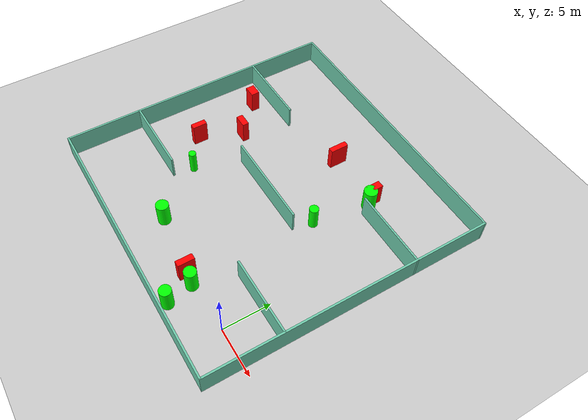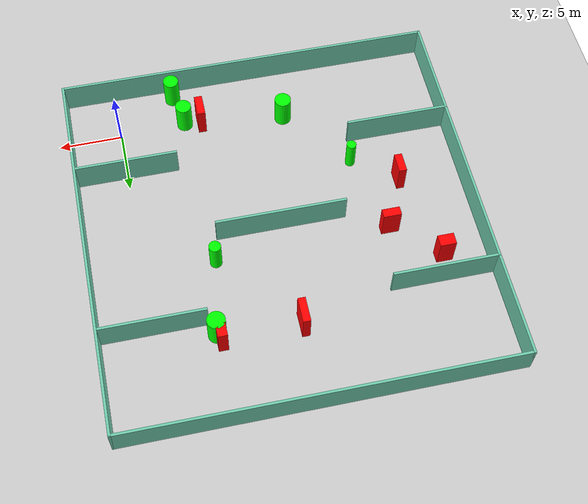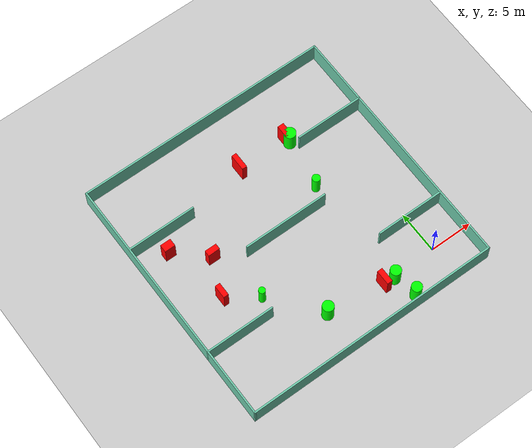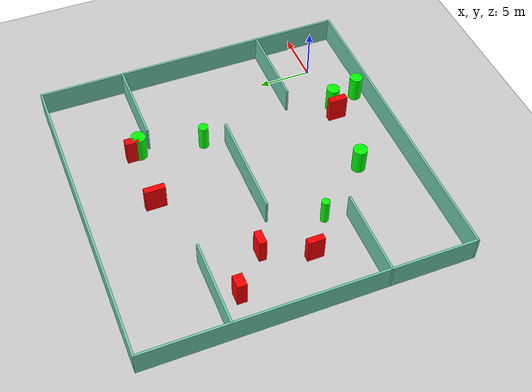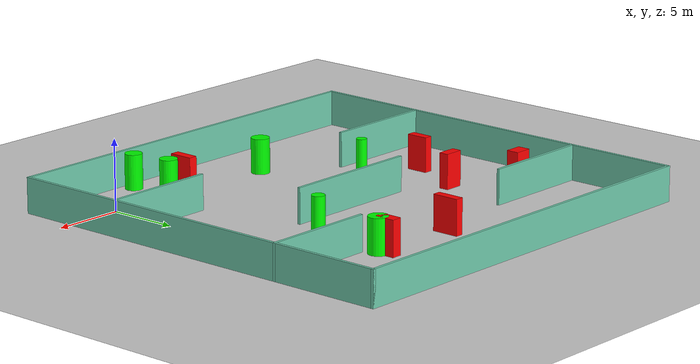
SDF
<sdf version="1.7">
 <world name="default">
  <light name="sun" type="directional">
   <pose>0 0 10 0 -0 0</pose>
   <diffuse>0.8 0.8 0.8 1</diffuse>
   <specular>0.2 0.2 0.2 1</specular>
   <attenuation>
    <range>1000</range>
    <constant>0.9</constant>
    <linear>0.01</linear>
    <quadratic>0.001</quadratic>
   </attenuation>
   <direction>-0.5 0.1 -0.9</direction>
   <spot><inner_angle>0</inner_angle><outer_angle>0</outer_angle><falloff>0</falloff></spot>
  </light>
  <model name="ground_plane">
   <static>1</static>
   <link name="link">
    <collision name="collision">
     <geometry><plane><normal>0 0 1</normal><size>100 100</size></plane></geometry>
     <surface>
      <contact><collide_bitmask>65535</collide_bitmask></contact>
      <friction><ode><mu>100</mu><mu2>50</mu2></ode></friction>
     </surface>
    </collision>
    <visual name="visual">
     <cast_shadows>0</cast_shadows>
     <geometry><plane><normal>0 0 1</normal><size>100 100</size></plane></geometry>
     <material>
      <script><uri>file://media/materials/scripts/gazebo.material</uri><name>Gazebo/Grey</name></script>
     </material>
    </visual>
   </link>
  </model>
  <gravity>0 0 -9.8</gravity>
  <magnetic_field>6e-06 2.3e-05 -4.2e-05</magnetic_field>
  <atmosphere type="adiabatic"/>
  <physics type="ode">
   <max_step_size>0.001</max_step_size>
   <real_time_factor>1</real_time_factor>
   <real_time_update_rate>1000</real_time_update_rate>
  </physics>
  <scene><ambient>0.4 0.4 0.4 1</ambient><background>0.7 0.7 0.7 1</background><shadows>1</shadows></scene>
  <spherical_coordinates>
   <surface_model>EARTH_WGS84</surface_model>
   <latitude_deg>0</latitude_deg>
   <longitude_deg>0</longitude_deg>
   <elevation>0</elevation>
   <heading_deg>0</heading_deg>
  </spherical_coordinates>
  <model name="my_base_walls">
   <link name="Wall_10">
    <collision name="Wall_10_Collision">
     <geometry><box><size>8.2 0.2 2.5</size></box></geometry>
     <pose>0 0 1.25 0 -0 0</pose>
    </collision>
    <visual name="Wall_10_Visual">
     <pose>0 0 1.25 0 -0 0</pose>
     <geometry><box><size>8.2 0.2 2.5</size></box></geometry>
     <material>
      <script><uri>file://media/materials/scripts/gazebo.material</uri><name>Gazebo/Grey</name></script>
      <ambient>0.435294 0.796078 0.67451 1</ambient>
     </material>
     <meta><layer>0</layer></meta>
    </visual>
    <pose>-11 -7 0 0 -0 0</pose>
   </link>
   <link name="Wall_12">
    <collision name="Wall_12_Collision">
     <geometry><box><size>8.2 0.2 2.5</size></box></geometry>
     <pose>0 0 1.25 0 -0 0</pose>
    </collision>
    <visual name="Wall_12_Visual">
     <pose>0 0 1.25 0 -0 0</pose>
     <geometry><box><size>8.2 0.2 2.5</size></box></geometry>
     <material>
      <script><uri>file://media/materials/scripts/gazebo.material</uri><name>Gazebo/Grey</name></script>
      <ambient>0.435294 0.796078 0.67451 1</ambient>
     </material>
     <meta><layer>0</layer></meta>
    </visual>
    <pose>-11 7 0 0 -0 0</pose>
   </link>
   <link name="Wall_14">
    <collision name="Wall_14_Collision">
     <geometry><box><size>8.2 0.2 2.5</size></box></geometry>
     <pose>0 0 1.25 0 -0 0</pose>
    </collision>
    <visual name="Wall_14_Visual">
     <pose>0 0 1.25 0 -0 0</pose>
     <geometry><box><size>8.2 0.2 2.5</size></box></geometry>
     <material>
      <script><uri>file://media/materials/scripts/gazebo.material</uri><name>Gazebo/Grey</name></script>
      <ambient>0.435294 0.796078 0.67451 1</ambient>
     </material>
     <meta><layer>0</layer></meta>
    </visual>
    <pose>11 7 0 0 -0 3.14159</pose>
   </link>
   <link name="Wall_16">
    <collision name="Wall_16_Collision">
     <geometry><box><size>10.2 0.2 2.5</size></box></geometry>
     <pose>0 0 1.25 0 -0 0</pose>
    </collision>
    <visual name="Wall_16_Visual">
     <pose>0 0 1.25 0 -0 0</pose>
     <geometry><box><size>10.2 0.2 2.5</size></box></geometry>
     <material>
      <script><uri>file://media/materials/scripts/gazebo.material</uri><name>Gazebo/Grey</name></script>
      <ambient>0.435294 0.796078 0.67451 1</ambient>
     </material>
     <meta><layer>0</layer></meta>
    </visual>
    <pose>0 0 0 0 -0 3.14159</pose>
   </link>
   <link name="Wall_2">
    <collision name="Wall_2_Collision">
     <geometry><box><size>30.2 0.2 2.5</size></box></geometry>
     <pose>0 0 1.25 0 -0 0</pose>
    </collision>
    <visual name="Wall_2_Visual">
     <pose>0 0 1.25 0 -0 0</pose>
     <geometry><box><size>30.2 0.2 2.5</size></box></geometry>
     <material>
      <script><uri>file://media/materials/scripts/gazebo.material</uri><name>Gazebo/Grey</name></script>
      <ambient>0.435294 0.796078 0.67451 1</ambient>
     </material>
     <meta><layer>0</layer></meta>
    </visual>
    <pose>0 -15 0 0 -0 3.14159</pose>
   </link>
   <link name="Wall_3">
    <collision name="Wall_3_Collision">
     <geometry><box><size>30.2 0.2 2.5</size></box></geometry>
     <pose>0 0 1.25 0 -0 0</pose>
    </collision>
    <visual name="Wall_3_Visual">
     <pose>0 0 1.25 0 -0 0</pose>
     <geometry><box><size>30.2 0.2 2.5</size></box></geometry>
     <material>
      <script><uri>file://media/materials/scripts/gazebo.material</uri><name>Gazebo/Grey</name></script>
      <ambient>0.435294 0.796078 0.67451 1</ambient>
     </material>
     <meta><layer>0</layer></meta>
    </visual>
    <pose>-15 0 0 0 -0 1.5708</pose>
   </link>
   <link name="Wall_4">
    <collision name="Wall_4_Collision">
     <geometry><box><size>30.2 0.2 2.5</size></box></geometry>
     <pose>0 0 1.25 0 -0 0</pose>
    </collision>
    <visual name="Wall_4_Visual">
     <pose>0 0 1.25 0 -0 0</pose>
     <geometry><box><size>30.2 0.2 2.5</size></box></geometry>
     <material>
      <script><uri>file://media/materials/scripts/gazebo.material</uri><name>Gazebo/Grey</name></script>
      <ambient>0.435294 0.796078 0.67451 1</ambient>
     </material>
     <meta><layer>0</layer></meta>
    </visual>
    <pose>0 15 0 0 -0 0</pose>
   </link>
   <link name="Wall_6">
    <collision name="Wall_6_Collision">
     <geometry><box><size>30.2 0.2 2.5</size></box></geometry>
     <pose>0 0 1.25 0 -0 0</pose>
    </collision>
    <visual name="Wall_6_Visual">
     <pose>0 0 1.25 0 -0 0</pose>
     <geometry><box><size>30.2 0.2 2.5</size></box></geometry>
     <material>
      <script><uri>file://media/materials/scripts/gazebo.material</uri><name>Gazebo/Grey</name></script>
      <ambient>0.435294 0.796078 0.67451 1</ambient>
     </material>
     <meta><layer>0</layer></meta>
    </visual>
    <pose>15 0 0 0 -0 1.5708</pose>
   </link>
   <link name="Wall_8">
    <collision name="Wall_8_Collision">
     <geometry><box><size>8.2 0.2 2.5</size></box></geometry>
     <pose>0 0 1.25 0 -0 0</pose>
    </collision>
    <visual name="Wall_8_Visual">
     <pose>0 0 1.25 0 -0 0</pose>
     <geometry><box><size>8.2 0.2 2.5</size></box></geometry>
     <material>
      <script><uri>file://media/materials/scripts/gazebo.material</uri><name>Gazebo/Grey</name></script>
      <ambient>0.435294 0.796078 0.67451 1</ambient>
     </material>
     <meta><layer>0</layer></meta>
    </visual>
    <pose>11 -7 0 0 -0 3.14159</pose>
   </link>
   <static>1</static>
   <pose>-11 11 0 0 -0 0</pose>
  </model>
  <model name="cylinder1">
   <static>1</static>
   <link name="link">
    <inertial>
     <mass>1</mass>
     <inertia><ixx>0.5</ixx><ixy>0</ixy><ixz>0</ixz><iyy>0.5</iyy><iyz>0</iyz><izz>1</izz></inertia>
    </inertial>
    <collision name="collision">
     <geometry><cylinder><radius>0.6271884214263486</radius><length>2.5</length></cylinder></geometry>
    </collision>
    <visual name="visual">
     <geometry><cylinder><radius>0.6271884214263486</radius><length>2.5</length></cylinder></geometry>
     <material>
      <ambient>0 1 0 1</ambient>
      <diffuse>0 1 0 1</diffuse>
      <specular>0.1 0.1 0.1 1</specular>
      <emissive>0 0 0 0</emissive>
     </material>
    </visual>
   </link>
   <pose>-5.288291116170543 -0.26485699210243085 1.25 0 0 0</pose>
  </model>
  <model name="cylinder2">
   <static>1</static>
   <link name="link">
    <inertial>
     <mass>1</mass>
     <inertia><ixx>0.5</ixx><ixy>0</ixy><ixz>0</ixz><iyy>0.5</iyy><iyz>0</iyz><izz>1</izz></inertia>
    </inertial>
    <collision name="collision">
     <geometry><cylinder><radius>0.6126850902534754</radius><length>2.5</length></cylinder></geometry>
    </collision>
    <visual name="visual">
     <geometry><cylinder><radius>0.6126850902534754</radius><length>2.5</length></cylinder></geometry>
     <material>
      <ambient>0 1 0 1</ambient>
      <diffuse>0 1 0 1</diffuse>
      <specular>0.1 0.1 0.1 1</specular>
      <emissive>0 0 0 0</emissive>
     </material>
    </visual>
   </link>
   <pose>-4.695530231264945 -2.99641944347848 1.25 0 0 0</pose>
  </model>
  <model name="cylinder3">
   <static>1</static>
   <link name="link">
    <inertial>
     <mass>1</mass>
     <inertia><ixx>0.5</ixx><ixy>0</ixy><ixz>0</ixz><iyy>0.5</iyy><iyz>0</iyz><izz>1</izz></inertia>
    </inertial>
    <collision name="collision">
     <geometry><cylinder><radius>0.6975109721893586</radius><length>2.5</length></cylinder></geometry>
    </collision>
    <visual name="visual">
     <geometry><cylinder><radius>0.6975109721893586</radius><length>2.5</length></cylinder></geometry>
     <material>
      <ambient>0 1 0 1</ambient>
      <diffuse>0 1 0 1</diffuse>
      <specular>0.1 0.1 0.1 1</specular>
      <emissive>0 0 0 0</emissive>
     </material>
    </visual>
   </link>
   <pose>-4.536073631506017 19.026405603399077 1.25 0 0 0</pose>
  </model>
  <model name="cylinder4">
   <static>1</static>
   <link name="link">
    <inertial>
     <mass>1</mass>
     <inertia><ixx>0.5</ixx><ixy>0</ixy><ixz>0</ixz><iyy>0.5</iyy><iyz>0</iyz><izz>1</izz></inertia>
    </inertial>
    <collision name="collision">
     <geometry><cylinder><radius>0.46890810205634104</radius><length>2.5</length></cylinder></geometry>
    </collision>
    <visual name="visual">
     <geometry><cylinder><radius>0.46890810205634104</radius><length>2.5</length></cylinder></geometry>
     <material>
      <ambient>0 1 0 1</ambient>
      <diffuse>0 1 0 1</diffuse>
      <specular>0.1 0.1 0.1 1</specular>
      <emissive>0 0 0 0</emissive>
     </material>
    </visual>
   </link>
   <pose>-5.5090906269547375 13.057013479210138 1.25 0 0 0</pose>
  </model>
  <model name="cylinder5">
   <static>1</static>
   <link name="link">
    <inertial>
     <mass>1</mass>
     <inertia><ixx>0.5</ixx><ixy>0</ixy><ixz>0</ixz><iyy>0.5</iyy><iyz>0</iyz><izz>1</izz></inertia>
    </inertial>
    <collision name="collision">
     <geometry><cylinder><radius>0.3805435629933935</radius><length>2.5</length></cylinder></geometry>
    </collision>
    <visual name="visual">
     <geometry><cylinder><radius>0.3805435629933935</radius><length>2.5</length></cylinder></geometry>
     <material>
      <ambient>0 1 0 1</ambient>
      <diffuse>0 1 0 1</diffuse>
      <specular>0.1 0.1 0.1 1</specular>
      <emissive>0 0 0 0</emissive>
     </material>
    </visual>
   </link>
   <pose>-17.674147813602456 6.150739072864074 1.25 0 0 0</pose>
  </model>
  <model name="cylinder6">
   <static>1</static>
   <link name="link">
    <inertial>
     <mass>1</mass>
     <inertia><ixx>0.5</ixx><ixy>0</ixy><ixz>0</ixz><iyy>0.5</iyy><iyz>0</iyz><izz>1</izz></inertia>
    </inertial>
    <collision name="collision">
     <geometry><cylinder><radius>0.6552068692052043</radius><length>2.5</length></cylinder></geometry>
    </collision>
    <visual name="visual">
     <geometry><cylinder><radius>0.6552068692052043</radius><length>2.5</length></cylinder></geometry>
     <material>
      <ambient>0 1 0 1</ambient>
      <diffuse>0 1 0 1</diffuse>
      <specular>0.1 0.1 0.1 1</specular>
      <emissive>0 0 0 0</emissive>
     </material>
    </visual>
   </link>
   <pose>-13.292309695598597 0.7202482100335419 1.25 0 0 0</pose>
  </model>
  <model name="box1">
   <static>1</static>
   <link name="link">
    <inertial>
     <mass>1</mass>
     <inertia><ixx>0.083</ixx><ixy>0</ixy><ixz>0</ixz><iyy>0.083</iyy><iyz>0</iyz><izz>0.083</izz></inertia>
    </inertial>
    <collision name="collision">
     <geometry><box><size>0.6076454823511694 1.5581058341478196 2.5</size></box></geometry>
    </collision>
    <visual name="visual">
     <geometry><box><size>0.6076454823511694 1.5581058341478196 2.5</size></box></geometry>
     <material>
      <ambient>1 0 0 1</ambient>
      <diffuse>1 0 0 1</diffuse>
      <specular>0.1 0.1 0.1 1</specular>
      <emissive>0 0 0 0</emissive>
     </material>
    </visual>
    <sensor name="my_contact" type="contact">
     <contact><collision>box_collision</collision><topic>__default_topic__</topic></contact>
    </sensor>
   </link>
   <pose>-20.996144046854017 8.590171372684086 1.25 0 0 0</pose>
  </model>
  <model name="box2">
   <static>1</static>
   <link name="link">
    <inertial>
     <mass>1</mass>
     <inertia><ixx>0.083</ixx><ixy>0</ixy><ixz>0</ixz><iyy>0.083</iyy><iyz>0</iyz><izz>0.083</izz></inertia>
    </inertial>
    <collision name="collision">
     <geometry><box><size>0.6380102922302227 1.733046387089564 2.5</size></box></geometry>
    </collision>
    <visual name="visual">
     <geometry><box><size>0.6380102922302227 1.733046387089564 2.5</size></box></geometry>
     <material>
      <ambient>1 0 0 1</ambient>
      <diffuse>1 0 0 1</diffuse>
      <specular>0.1 0.1 0.1 1</specular>
      <emissive>0 0 0 0</emissive>
     </material>
    </visual>
    <sensor name="my_contact" type="contact">
     <contact><collision>box_collision</collision><topic>__default_topic__</topic></contact>
    </sensor>
   </link>
   <pose>-6.614313545083396 -0.11971460154681335 1.25 0 0 0</pose>
  </model>
  <model name="box3">
   <static>1</static>
   <link name="link">
    <inertial>
     <mass>1</mass>
     <inertia><ixx>0.083</ixx><ixy>0</ixy><ixz>0</ixz><iyy>0.083</iyy><iyz>0</iyz><izz>0.083</izz></inertia>
    </inertial>
    <collision name="collision">
     <geometry><box><size>1.2522521211320607 0.9030371895464181 2.5</size></box></geometry>
    </collision>
    <visual name="visual">
     <geometry><box><size>1.2522521211320607 0.9030371895464181 2.5</size></box></geometry>
     <material>
      <ambient>1 0 0 1</ambient>
      <diffuse>1 0 0 1</diffuse>
      <specular>0.1 0.1 0.1 1</specular>
      <emissive>0 0 0 0</emissive>
     </material>
    </visual>
    <sensor name="my_contact" type="contact">
     <contact><collision>box_collision</collision><topic>__default_topic__</topic></contact>
    </sensor>
   </link>
   <pose>-22.556659000705757 16.013239955643247 1.25 0 0 0</pose>
  </model>
  <model name="box4">
   <static>1</static>
   <link name="link">
    <inertial>
     <mass>1</mass>
     <inertia><ixx>0.083</ixx><ixy>0</ixy><ixz>0</ixz><iyy>0.083</iyy><iyz>0</iyz><izz>0.083</izz></inertia>
    </inertial>
    <collision name="collision">
     <geometry><box><size>0.7471334733071018 1.4892293100950673 2.5</size></box></geometry>
    </collision>
    <visual name="visual">
     <geometry><box><size>0.7471334733071018 1.4892293100950673 2.5</size></box></geometry>
     <material>
      <ambient>1 0 0 1</ambient>
      <diffuse>1 0 0 1</diffuse>
      <specular>0.1 0.1 0.1 1</specular>
      <emissive>0 0 0 0</emissive>
     </material>
    </visual>
    <sensor name="my_contact" type="contact">
     <contact><collision>box_collision</collision><topic>__default_topic__</topic></contact>
    </sensor>
   </link>
   <pose>-4.780045235005598 19.62753916850597 1.25 0 0 0</pose>
  </model>
  <model name="box5">
   <static>1</static>
   <link name="link">
    <inertial>
     <mass>1</mass>
     <inertia><ixx>0.083</ixx><ixy>0</ixy><ixz>0</ixz><iyy>0.083</iyy><iyz>0</iyz><izz>0.083</izz></inertia>
    </inertial>
    <collision name="collision">
     <geometry><box><size>0.5863038095561504 1.9342289800289179 2.5</size></box></geometry>
    </collision>
    <visual name="visual">
     <geometry><box><size>0.5863038095561504 1.9342289800289179 2.5</size></box></geometry>
     <material>
      <ambient>1 0 0 1</ambient>
      <diffuse>1 0 0 1</diffuse>
      <specular>0.1 0.1 0.1 1</specular>
      <emissive>0 0 0 0</emissive>
     </material>
    </visual>
    <sensor name="my_contact" type="contact">
     <contact><collision>box_collision</collision><topic>__default_topic__</topic></contact>
    </sensor>
   </link>
   <pose>-10.875328197266953 19.49851183611566 1.25 0 0 0</pose>
  </model>
  <model name="box6">
   <static>1</static>
   <link name="link">
    <inertial>
     <mass>1</mass>
     <inertia><ixx>0.083</ixx><ixy>0</ixy><ixz>0</ixz><iyy>0.083</iyy><iyz>0</iyz><izz>0.083</izz></inertia>
    </inertial>
    <collision name="collision">
     <geometry><box><size>1.3938291904524223 0.6865925979668416 2.5</size></box></geometry>
    </collision>
    <visual name="visual">
     <geometry><box><size>1.3938291904524223 0.6865925979668416 2.5</size></box></geometry>
     <material>
      <ambient>1 0 0 1</ambient>
      <diffuse>1 0 0 1</diffuse>
      <specular>0.1 0.1 0.1 1</specular>
      <emissive>0 0 0 0</emissive>
     </material>
    </visual>
    <sensor name="my_contact" type="contact">
     <contact><collision>box_collision</collision><topic>__default_topic__</topic></contact>
    </sensor>
   </link>
   <pose>-19.1451538978202 12.84513315158408 1.25 0 0 0</pose>
  </model>
 </world>
</sdf>
